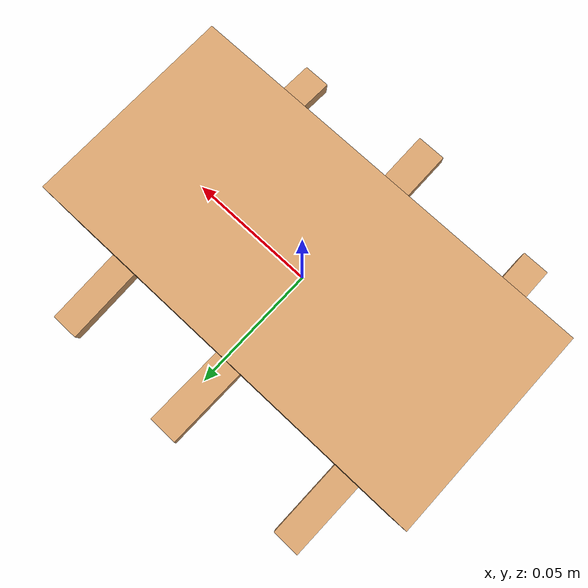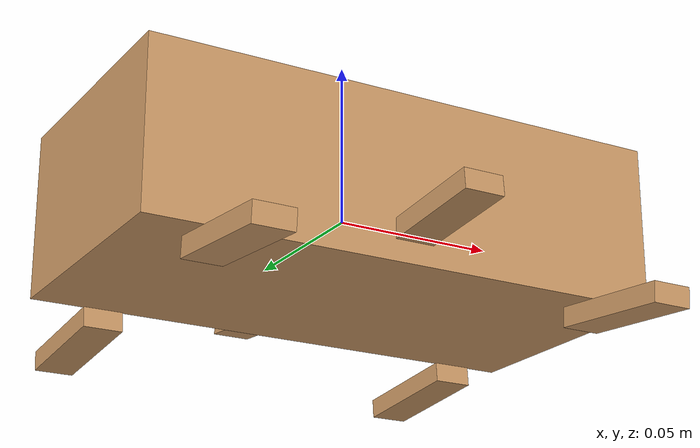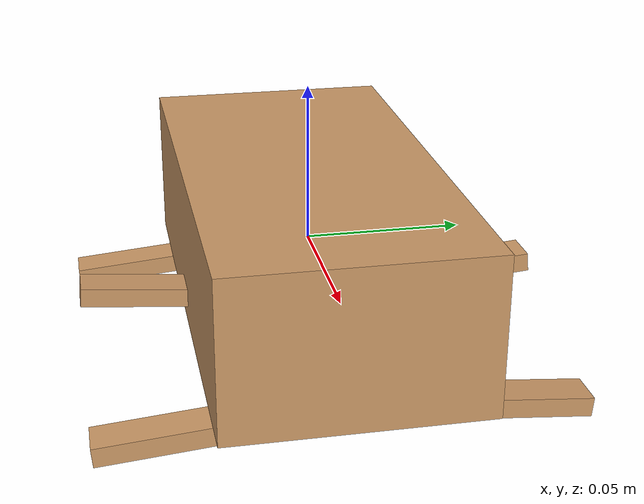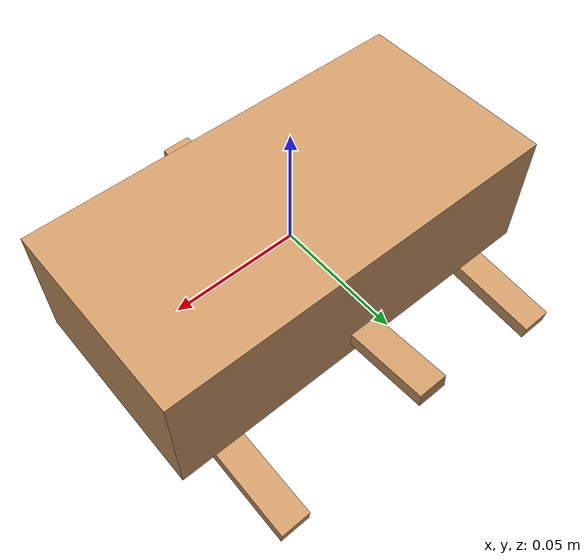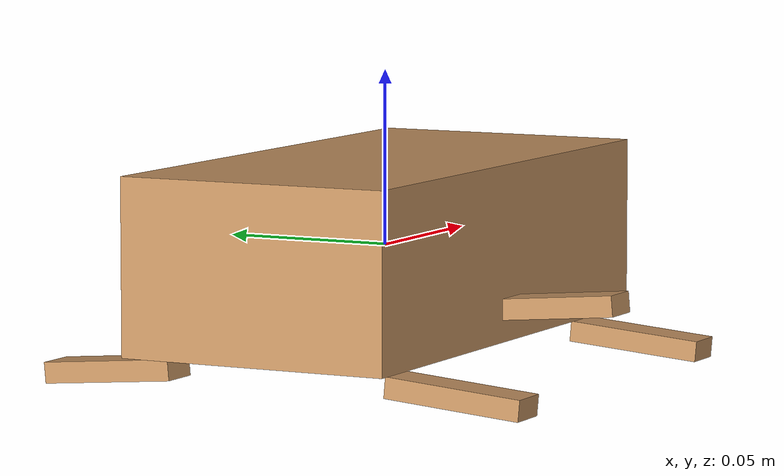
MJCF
<mujoco model="kamigami">
  <compiler angle="radian"/>
  <default>
    <motor ctrlrange="-1.0 1.0" ctrllimited="true" gear="25"/>
    <geom friction="1 0.5 0.5" solref=".02 1" solimp="0 .8 .01" material="self" density="50.0"/>
    <joint limited="false"/>
  </default>
  <asset>
    <material name="self" rgba=".8 .6 .4 1"/>
  </asset>
  <worldbody>
    <camera name="float_far"  pos="-2.5 0 2" xyaxes="0 -1 0 .5 0 1" mode="trackcom" fovy="70"/>

    <body name="torso" pos="0 0 0">

      <geom name="torso_geom" type="box" size="0.08 0.04 0.025" density="100.0"/>

      <!-- sites that visualize the x-y axis of the ant body, good for debugging -->

      <body name="left_front_leg" pos="0.06 0.03 -0.023">
        <joint name="left_front_joint" axis="0 1 0"/>
        <geom name="left_front_leg_geom" type="box" pos="0 0.0234923155 -0.00855050358" axisangle="1 0 0 -0.0872664626" size="0.006 0.02 0.003"/>
      </body>

      <body name="left_center_leg" pos="0 0.03 -0.023">
        <joint name="left_center_joint" axis="0 1 0" armature="0.05" damping="0.3"/>
        <geom name="left_center_leg_geom" type="box" pos="0 0.0234923155 0.00855050358" axisangle="1 0 0 0.0872664626" size="0.006 0.02 0.003"/>
      </body>

      <body name="left_back_leg" pos="-0.06 0.03 -0.023">
        <joint name="left_back_joint" axis="0 1 0"/>
        <geom name="left_back_leg_geom" type="box" pos="0 0.0234923155 -0.00855050358" axisangle="1 0 0 -0.0872664626" size="0.006 0.02 0.003"/>
      </body>

      <body name="right_front_leg" pos="0.06 -0.03 -0.023">
        <joint name="right_front_joint" axis="0 1 0"/>
        <geom name="right_front_leg_geom" type="box" pos="0 -0.0234923155 -0.00855050358" axisangle="1 0 0 0.0872664626" size="0.006 0.02 0.003"/>
      </body>

      <body name="right_center_leg" pos="0 -0.03 -0.023">
        <joint name="right_center_joint" axis="0 1 0" armature="0.05" damping="0.3"/>
        <geom name="right_center_leg_geom" type="box" pos="0 -0.0234923155 0.00855050358" axisangle="1 0 0 -0.0872664626" size="0.006 0.02 0.003"/>
      </body>

      <body name="right_back_leg" pos="-0.06 -0.03 -0.023">
        <joint name="right_back_joint" axis="0 1 0"/>
        <geom name="right_back_leg_geom" type="box" pos="0 -0.0234923155 -0.00855050358" axisangle="1 0 0 0.0872664626" size="0.006 0.02 0.003"/>
      </body>

    </body>

  </worldbody>

  <actuator>
    <motor name="left_center_joint" joint="left_center_joint"/>
    <motor name="right_center_joint" joint="right_center_joint"/>
  </actuator>

  <equality>
    <joint active="true" joint1="left_center_joint" joint2="left_front_joint"/>
    <joint active="true" joint1="left_center_joint" joint2="left_back_joint"/>
    <joint active="true" joint1="right_center_joint" joint2="right_front_joint"/>
    <joint active="true" joint1="right_center_joint" joint2="right_back_joint"/>
  </equality>

  <contact>
    <exclude body1="torso" body2="left_front_leg"/>
    <exclude body1="torso" body2="left_center_leg"/>
    <exclude body1="torso" body2="left_back_leg"/>
    <exclude body1="torso" body2="right_front_leg"/>
    <exclude body1="torso" body2="right_center_leg"/>
    <exclude body1="torso" body2="right_back_leg"/>
  </contact>
</mujoco>
